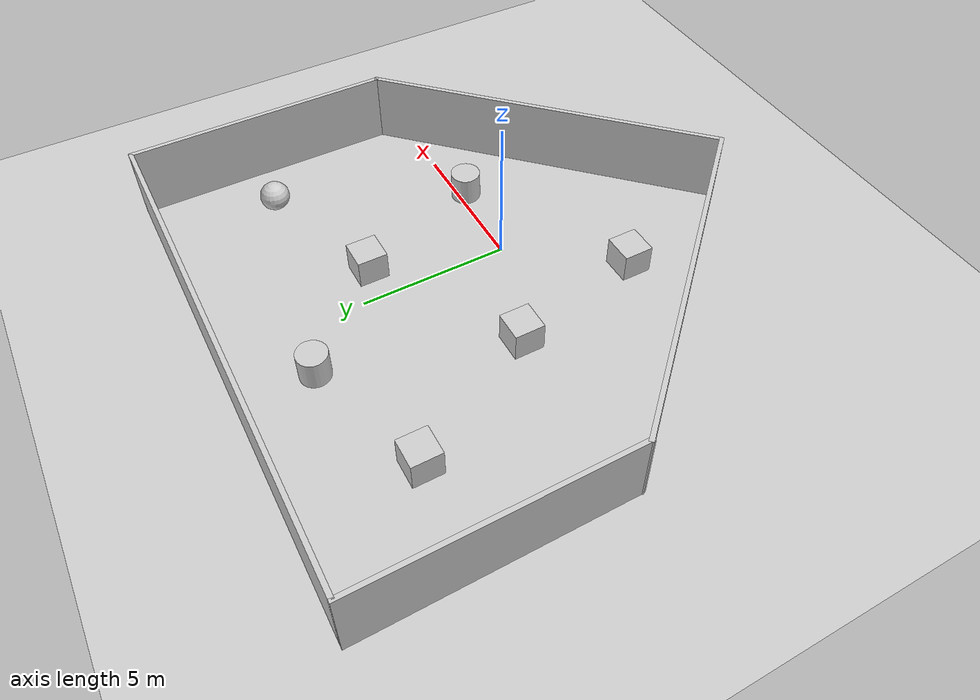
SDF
<?xml version='1.0' encoding='utf-8'?>
<sdf version="1.8">
  <world name="obstacles">
    <plugin filename="gz-sim-physics-system" name="gz::sim::systems::Physics" /><plugin filename="gz-sim-user-commands-system" name="gz::sim::systems::UserCommands" /><plugin filename="gz-sim-scene-broadcaster-system" name="gz::sim::systems::SceneBroadcaster" /><plugin filename="gz-sim-sensors-system" name="gz::sim::systems::Sensors"><render_engine>ogre2</render_engine></plugin><light name="sun" type="directional">
      <cast_shadows>1</cast_shadows>
      <pose>0 0 10 0 -0 0</pose>
      <diffuse>0.8 0.8 0.8 1</diffuse>
      <specular>0.2 0.2 0.2 1</specular>
      <attenuation>
        <range>1000</range>
        <constant>0.9</constant>
        <linear>0.01</linear>
        <quadratic>0.001</quadratic>
      </attenuation>
      <direction>-0.5 0.1 -0.9</direction>
      <spot>
        <inner_angle>0</inner_angle>
        <outer_angle>0</outer_angle>
        <falloff>0</falloff>
      </spot>
    </light>
    <model name="ground_plane">
      <static>1</static>
      <link name="link">
        <collision name="collision">
          <geometry>
            <plane>
              <normal>0 0 1</normal>
              <size>100 100</size>
            </plane>
          </geometry>
          <surface>
            <contact>
              <collide_bitmask>65535</collide_bitmask>
              <ode />
            </contact>
            <friction>
              <ode>
                <mu>100</mu>
                <mu2>50</mu2>
              </ode>
              <torsional>
                <ode />
              </torsional>
            </friction>
            <bounce />
          </surface>
          <max_contacts>10</max_contacts>
        </collision>
        <visual name="visual">
          <cast_shadows>0</cast_shadows>
          <geometry>
            <plane>
              <normal>0 0 1</normal>
              <size>100 100</size>
            </plane>
          </geometry>
          <material>
            <ambient>0.8 0.8 0.8 1.0</ambient><diffuse>0.8 0.8 0.8 1.0</diffuse><specular>0.2 0.2 0.2 1.0</specular></material>
        </visual>
        <self_collide>0</self_collide>
        <enable_wind>0</enable_wind>
        <kinematic>0</kinematic>
      </link>
    </model>
    <gravity>0 0 -9.8</gravity>
    <magnetic_field>6e-06 2.3e-05 -4.2e-05</magnetic_field>
    <atmosphere type="adiabatic" />
    <physics type="ode">
      <max_step_size>0.001</max_step_size>
      <real_time_factor>1</real_time_factor>
      <real_time_update_rate>1000</real_time_update_rate>
    </physics>
    <scene>
      <ambient>0.4 0.4 0.4 1</ambient>
      <background>0.7 0.7 0.7 1</background>
      <shadows>1</shadows>
    </scene>
    <audio>
      <device>default</device>
    </audio>
    <wind />
    <spherical_coordinates>
      <surface_model>EARTH_WGS84</surface_model>
      <latitude_deg>0</latitude_deg>
      <longitude_deg>0</longitude_deg>
      <elevation>0</elevation>
      <heading_deg>0</heading_deg>
    </spherical_coordinates>
    <model name="Untitled">
      <pose>-1.07221 0.955784 0 0 -0 0</pose>
      <link name="Wall_10">
        <collision name="Wall_10_Collision">
          <geometry>
            <box>
              <size>9 0.15 2.5</size>
            </box>
          </geometry>
          <pose>0 0 1.25 0 -0 0</pose>
          <max_contacts>10</max_contacts>
          <surface>
            <contact>
              <ode />
            </contact>
            <bounce />
            <friction>
              <torsional>
                <ode />
              </torsional>
              <ode />
            </friction>
          </surface>
        </collision>
        <visual name="Wall_10_Visual">
          <pose>0 0 1.25 0 -0 0</pose>
          <geometry>
            <box>
              <size>9 0.15 2.5</size>
            </box>
          </geometry>
          <material>
            <ambient>1 1 1 1</ambient>
          <diffuse>0.8 0.8 0.8 1.0</diffuse><specular>0.2 0.2 0.2 1.0</specular></material>
          <meta>
            <layer>0</layer>
          </meta>
        </visual>
        <pose>8.67499 4.38192 0 0 -0 -1.5708</pose>
        <self_collide>0</self_collide>
        <enable_wind>0</enable_wind>
        <kinematic>0</kinematic>
      </link>
      <link name="Wall_11">
        <collision name="Wall_11_Collision">
          <geometry>
            <box>
              <size>12.5 0.15 2.5</size>
            </box>
          </geometry>
          <pose>0 0 1.25 0 -0 0</pose>
          <max_contacts>10</max_contacts>
          <surface>
            <contact>
              <ode />
            </contact>
            <bounce />
            <friction>
              <torsional>
                <ode />
              </torsional>
              <ode />
            </friction>
          </surface>
        </collision>
        <visual name="Wall_11_Visual">
          <pose>0 0 1.25 0 -0 0</pose>
          <geometry>
            <box>
              <size>12.5 0.15 2.5</size>
            </box>
          </geometry>
          <material>
            <ambient>1 1 1 1</ambient>
          <diffuse>0.8 0.8 0.8 1.0</diffuse><specular>0.2 0.2 0.2 1.0</specular></material>
          <meta>
            <layer>0</layer>
          </meta>
        </visual>
        <pose>4.3086 -4.40947 0 0 -0 -2.35619</pose>
        <self_collide>0</self_collide>
        <enable_wind>0</enable_wind>
        <kinematic>0</kinematic>
      </link>
      <link name="Wall_12">
        <collision name="Wall_12_Collision">
          <geometry>
            <box>
              <size>12.5978 0.15 2.5</size>
            </box>
          </geometry>
          <pose>0 0 1.25 0 -0 0</pose>
          <max_contacts>10</max_contacts>
          <surface>
            <contact>
              <ode />
            </contact>
            <bounce />
            <friction>
              <torsional>
                <ode />
              </torsional>
              <ode />
            </friction>
          </surface>
        </collision>
        <visual name="Wall_12_Visual">
          <pose>0 0 1.25 0 -0 0</pose>
          <geometry>
            <box>
              <size>12.5978 0.15 2.5</size>
            </box>
          </geometry>
          <material>
            <ambient>1 1 1 1</ambient>
          <diffuse>0.8 0.8 0.8 1.0</diffuse><specular>0.2 0.2 0.2 1.0</specular></material>
          <meta>
            <layer>0</layer>
          </meta>
        </visual>
        <pose>-4.3664 -4.28447 0 0 -0 2.33543</pose>
        <self_collide>0</self_collide>
        <enable_wind>0</enable_wind>
        <kinematic>0</kinematic>
      </link>
      <link name="Wall_8">
        <collision name="Wall_8_Collision">
          <geometry>
            <box>
              <size>8.75 0.15 2.5</size>
            </box>
          </geometry>
          <pose>0 0 1.25 0 -0 0</pose>
          <max_contacts>10</max_contacts>
          <surface>
            <contact>
              <ode />
            </contact>
            <bounce />
            <friction>
              <torsional>
                <ode />
              </torsional>
              <ode />
            </friction>
          </surface>
        </collision>
        <visual name="Wall_8_Visual">
          <pose>0 0 1.25 0 -0 0</pose>
          <geometry>
            <box>
              <size>8.75 0.15 2.5</size>
            </box>
          </geometry>
          <material>
            <ambient>1 1 1 1</ambient>
          <diffuse>0.8 0.8 0.8 1.0</diffuse><specular>0.2 0.2 0.2 1.0</specular></material>
          <meta>
            <layer>0</layer>
          </meta>
        </visual>
        <pose>-8.67501 4.50692 0 0 -0 1.5708</pose>
        <self_collide>0</self_collide>
        <enable_wind>0</enable_wind>
        <kinematic>0</kinematic>
      </link>
      <link name="Wall_9">
        <collision name="Wall_9_Collision">
          <geometry>
            <box>
              <size>17.5 0.15 2.5</size>
            </box>
          </geometry>
          <pose>0 0 1.25 0 -0 0</pose>
          <max_contacts>10</max_contacts>
          <surface>
            <contact>
              <ode />
            </contact>
            <bounce />
            <friction>
              <torsional>
                <ode />
              </torsional>
              <ode />
            </friction>
          </surface>
        </collision>
        <visual name="Wall_9_Visual">
          <pose>0 0 1.25 0 -0 0</pose>
          <geometry>
            <box>
              <size>17.5 0.15 2.5</size>
            </box>
          </geometry>
          <material>
            <ambient>1 1 1 1</ambient>
          <diffuse>0.8 0.8 0.8 1.0</diffuse><specular>0.2 0.2 0.2 1.0</specular></material>
          <meta>
            <layer>0</layer>
          </meta>
        </visual>
        <pose>-1.2e-05 8.80692 0 0 -0 0</pose>
        <self_collide>0</self_collide>
        <enable_wind>0</enable_wind>
        <kinematic>0</kinematic>
      </link>
      <static>1</static>
    </model>
    <model name="unit_box">
      <pose>-6.20922 5.9944 0.5 0 -0 0</pose>
      <link name="link">
        <inertial>
          <mass>1</mass>
          <inertia>
            <ixx>0.166667</ixx>
            <ixy>0</ixy>
            <ixz>0</ixz>
            <iyy>0.166667</iyy>
            <iyz>0</iyz>
            <izz>0.166667</izz>
          </inertia>
          <pose>0 0 0 0 -0 0</pose>
        </inertial>
        <collision name="collision">
          <geometry>
            <box>
              <size>1 1 1</size>
            </box>
          </geometry>
          <max_contacts>10</max_contacts>
          <surface>
            <contact>
              <ode />
            </contact>
            <bounce />
            <friction>
              <torsional>
                <ode />
              </torsional>
              <ode />
            </friction>
          </surface>
        </collision>
        <visual name="visual">
          <geometry>
            <box>
              <size>1 1 1</size>
            </box>
          </geometry>
          <material>
            <ambient>0.8 0.8 0.8 1.0</ambient><diffuse>0.8 0.8 0.8 1.0</diffuse><specular>0.2 0.2 0.2 1.0</specular></material>
        </visual>
        <self_collide>0</self_collide>
        <enable_wind>0</enable_wind>
        <kinematic>0</kinematic>
      </link>
    <static>1</static></model>
    <model name="unit_box_0">
      <pose>1.23391 4.26619 0.5 0 -0 0</pose>
      <link name="link">
        <inertial>
          <mass>1</mass>
          <inertia>
            <ixx>0.166667</ixx>
            <ixy>0</ixy>
            <ixz>0</ixz>
            <iyy>0.166667</iyy>
            <iyz>0</iyz>
            <izz>0.166667</izz>
          </inertia>
          <pose>0 0 0 0 -0 0</pose>
        </inertial>
        <collision name="collision">
          <geometry>
            <box>
              <size>1 1 1</size>
            </box>
          </geometry>
          <max_contacts>10</max_contacts>
          <surface>
            <contact>
              <ode />
            </contact>
            <bounce />
            <friction>
              <torsional>
                <ode />
              </torsional>
              <ode />
            </friction>
          </surface>
        </collision>
        <visual name="visual">
          <geometry>
            <box>
              <size>1 1 1</size>
            </box>
          </geometry>
          <material>
            <ambient>0.8 0.8 0.8 1.0</ambient><diffuse>0.8 0.8 0.8 1.0</diffuse><specular>0.2 0.2 0.2 1.0</specular></material>
        </visual>
        <self_collide>0</self_collide>
        <enable_wind>0</enable_wind>
        <kinematic>0</kinematic>
      </link>
    <static>1</static></model>
    <model name="unit_box_1">
      <pose>-3.73069 1.39057 0.5 0 -0 0</pose>
      <link name="link">
        <inertial>
          <mass>1</mass>
          <inertia>
            <ixx>0.166667</ixx>
            <ixy>0</ixy>
            <ixz>0</ixz>
            <iyy>0.166667</iyy>
            <iyz>0</iyz>
            <izz>0.166667</izz>
          </inertia>
          <pose>0 0 0 0 -0 0</pose>
        </inertial>
        <collision name="collision">
          <geometry>
            <box>
              <size>1 1 1</size>
            </box>
          </geometry>
          <max_contacts>10</max_contacts>
          <surface>
            <contact>
              <ode />
            </contact>
            <bounce />
            <friction>
              <torsional>
                <ode />
              </torsional>
              <ode />
            </friction>
          </surface>
        </collision>
        <visual name="visual">
          <geometry>
            <box>
              <size>1 1 1</size>
            </box>
          </geometry>
          <material>
            <ambient>0.8 0.8 0.8 1.0</ambient><diffuse>0.8 0.8 0.8 1.0</diffuse><specular>0.2 0.2 0.2 1.0</specular></material>
        </visual>
        <self_collide>0</self_collide>
        <enable_wind>0</enable_wind>
        <kinematic>0</kinematic>
      </link>
    <static>1</static></model>
    <model name="unit_cylinder">
      <pose>3.02704 -0.248404 0.5 0 -0 0</pose>
      <link name="link">
        <inertial>
          <mass>1</mass>
          <inertia>
            <ixx>0.145833</ixx>
            <ixy>0</ixy>
            <ixz>0</ixz>
            <iyy>0.145833</iyy>
            <iyz>0</iyz>
            <izz>0.125</izz>
          </inertia>
          <pose>0 0 0 0 -0 0</pose>
        </inertial>
        <collision name="collision">
          <geometry>
            <cylinder>
              <radius>0.5</radius>
              <length>1</length>
            </cylinder>
          </geometry>
          <max_contacts>10</max_contacts>
          <surface>
            <contact>
              <ode />
            </contact>
            <bounce />
            <friction>
              <torsional>
                <ode />
              </torsional>
              <ode />
            </friction>
          </surface>
        </collision>
        <visual name="visual">
          <geometry>
            <cylinder>
              <radius>0.5</radius>
              <length>1</length>
            </cylinder>
          </geometry>
          <material>
            <ambient>0.8 0.8 0.8 1.0</ambient><diffuse>0.8 0.8 0.8 1.0</diffuse><specular>0.2 0.2 0.2 1.0</specular></material>
        </visual>
        <self_collide>0</self_collide>
        <enable_wind>0</enable_wind>
        <kinematic>0</kinematic>
      </link>
    <static>1</static></model>
    <model name="unit_sphere">
      <pose>5.65625 5.81259 0.5 0 -0 0</pose>
      <link name="link">
        <inertial>
          <mass>1</mass>
          <inertia>
            <ixx>0.1</ixx>
            <ixy>0</ixy>
            <ixz>0</ixz>
            <iyy>0.1</iyy>
            <iyz>0</iyz>
            <izz>0.1</izz>
          </inertia>
          <pose>0 0 0 0 -0 0</pose>
        </inertial>
        <collision name="collision">
          <geometry>
            <sphere>
              <radius>0.5</radius>
            </sphere>
          </geometry>
          <max_contacts>10</max_contacts>
          <surface>
            <contact>
              <ode />
            </contact>
            <bounce />
            <friction>
              <torsional>
                <ode />
              </torsional>
              <ode />
            </friction>
          </surface>
        </collision>
        <visual name="visual">
          <geometry>
            <sphere>
              <radius>0.5</radius>
            </sphere>
          </geometry>
          <material>
            <ambient>0.8 0.8 0.8 1.0</ambient><diffuse>0.8 0.8 0.8 1.0</diffuse><specular>0.2 0.2 0.2 1.0</specular></material>
        </visual>
        <self_collide>0</self_collide>
        <enable_wind>0</enable_wind>
        <kinematic>0</kinematic>
      </link>
    <static>1</static></model>
    <model name="unit_box_2">
      <pose>-2.61273 -3.27936 0.5 0 -0 0</pose>
      <link name="link">
        <inertial>
          <mass>1</mass>
          <inertia>
            <ixx>0.166667</ixx>
            <ixy>0</ixy>
            <ixz>0</ixz>
            <iyy>0.166667</iyy>
            <iyz>0</iyz>
            <izz>0.166667</izz>
          </inertia>
          <pose>0 0 0 0 -0 0</pose>
        </inertial>
        <collision name="collision">
          <geometry>
            <box>
              <size>1 1 1</size>
            </box>
          </geometry>
          <max_contacts>10</max_contacts>
          <surface>
            <contact>
              <ode />
            </contact>
            <bounce />
            <friction>
              <torsional>
                <ode />
              </torsional>
              <ode />
            </friction>
          </surface>
        </collision>
        <visual name="visual">
          <geometry>
            <box>
              <size>1 1 1</size>
            </box>
          </geometry>
          <material>
            <ambient>0.8 0.8 0.8 1.0</ambient><diffuse>0.8 0.8 0.8 1.0</diffuse><specular>0.2 0.2 0.2 1.0</specular></material>
        </visual>
        <self_collide>0</self_collide>
        <enable_wind>0</enable_wind>
        <kinematic>0</kinematic>
      </link>
    <static>1</static></model>
    <model name="unit_cylinder_0">
      <pose>-1.86492 7.35283 0.5 0 -0 0</pose>
      <link name="link">
        <inertial>
          <mass>1</mass>
          <inertia>
            <ixx>0.145833</ixx>
            <ixy>0</ixy>
            <ixz>0</ixz>
            <iyy>0.145833</iyy>
            <iyz>0</iyz>
            <izz>0.125</izz>
          </inertia>
          <pose>0 0 0 0 -0 0</pose>
        </inertial>
        <collision name="collision">
          <geometry>
            <cylinder>
              <radius>0.5</radius>
              <length>1</length>
            </cylinder>
          </geometry>
          <max_contacts>10</max_contacts>
          <surface>
            <contact>
              <ode />
            </contact>
            <bounce />
            <friction>
              <torsional>
                <ode />
              </torsional>
              <ode />
            </friction>
          </surface>
        </collision>
        <visual name="visual">
          <geometry>
            <cylinder>
              <radius>0.5</radius>
              <length>1</length>
            </cylinder>
          </geometry>
          <material>
            <ambient>0.8 0.8 0.8 1.0</ambient><diffuse>0.8 0.8 0.8 1.0</diffuse><specular>0.2 0.2 0.2 1.0</specular></material>
        </visual>
        <self_collide>0</self_collide>
        <enable_wind>0</enable_wind>
        <kinematic>0</kinematic>
      </link>
    <static>1</static></model>
    <gui fullscreen="0">
      <camera name="user_camera">
        <pose>2.74115 -19.2339 29.0042 -0 0.895643 1.5922</pose>
        <view_controller>orbit</view_controller>
        <projection_type>perspective</projection_type>
      </camera>
    </gui>
  </world>
</sdf>
